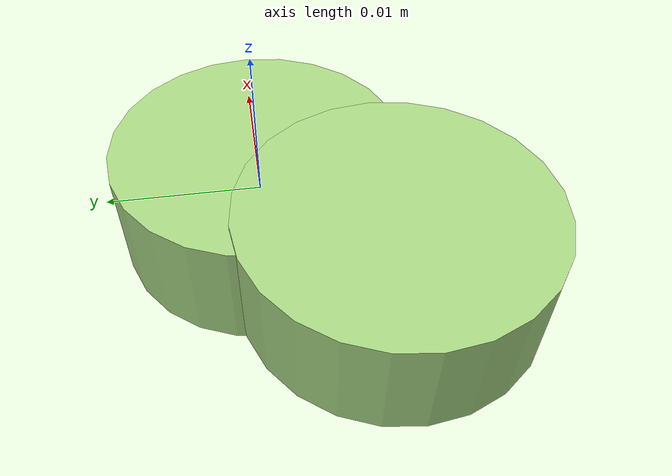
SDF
<?xml version="1.0" ?>
<!-- |    This document was autogenerated by xmacro from data/veggie_template/veggie_base.sdf.xacro  | -->
<!-- |    EDITING THIS FILE BY HAND IS NOT RECOMMENDED                                               | -->
<sdf version="1.8">
	<!-- Parameters -->
	<!-- Base -->
	<!-- Joint 0 -->
	<!-- Link 1 -->
	<!-- Joint 1 -->
	<!-- Link 2 -->
	<!-- Primitives -->
	<!-- All dimensions are half -->
	<!-- Object -->
	<model name="veggie">
		<!-- link0 -->
		<link name="link0">
			<inertial>
				<mass>0.0020275497954422702</mass>
				<inertia>
					<ixx>5.290310319533418e-08</ixx>
					<ixy>0</ixy>
					<ixz>0</ixz>
					<iyy>5.290310319533418e-08</iyy>
					<iyz>0</iyz>
					<izz>8.645045299029743e-08</izz>
				</inertia>
			</inertial>
			<visual name="link0_visual">
				<pose>0 0 0 0 0 0</pose>
				<geometry>
					<cylinder>
						<radius>0.009234489034924609</radius>
						<length>0.007568240089661773</length>
					</cylinder>
				</geometry>
				<material>
					<ambient>0.659 0.839 0.514 1</ambient>
					<diffuse>0.659 0.839 0.514 1</diffuse>
					<specular>0 0 0 0</specular>
					<emissive>0 0 0 1</emissive>
				</material>
			</visual>
			<collision name="link0_collision">
				<pose>0 0 0 0 0 0 </pose>
				<geometry>
					<cylinder>
						<radius>0.009234489034924609</radius>
						<length>0.007568240089661773</length>
					</cylinder>
				</geometry>
			</collision>
		</link>
		<!-- link1 -->
		<joint name="joint0" type="fixed">
			<pose relative_to="link0">-0.007024979630434722 -0.007533942378043219 0.0004930574569688871 0.0 0.0 0.0</pose>
			<parent>link0</parent>
			<child>link1</child>
		</joint>
		<link name="link1">
			<pose relative_to="joint0">0 0 0 0 0 0</pose>
			<inertial>
				<mass>0.002138672713051677</mass>
				<inertia>
					<ixx>5.954864992681728e-08</ixx>
					<ixy>0</ixy>
					<ixz>0</ixz>
					<iyy>5.954864992681728e-08</iyy>
					<iyz>0</iyz>
					<izz>1.0033378248329694e-07</izz>
				</inertia>
			</inertial>
			<visual name="link1_visual">
				<pose>0 0 0 0 0 0</pose>
				<geometry>
					<cylinder>
						<radius>0.009686489814900185</radius>
						<length>0.007255387088446586</length>
					</cylinder>
				</geometry>
				<material>
					<ambient>0.659 0.839 0.514 1</ambient>
					<diffuse>0.659 0.839 0.514 1</diffuse>
					<specular>0 0 0 0</specular>
					<emissive>0 0 0 1</emissive>
				</material>
			</visual>
			<collision name="link1_collision">
				<pose>0 0 0 0 0 0 </pose>
				<geometry>
					<cylinder>
						<radius>0.009686489814900185</radius>
						<length>0.007255387088446586</length>
					</cylinder>
				</geometry>
			</collision>
		</link>
		<!-- link2 -->
	</model>
</sdf>
